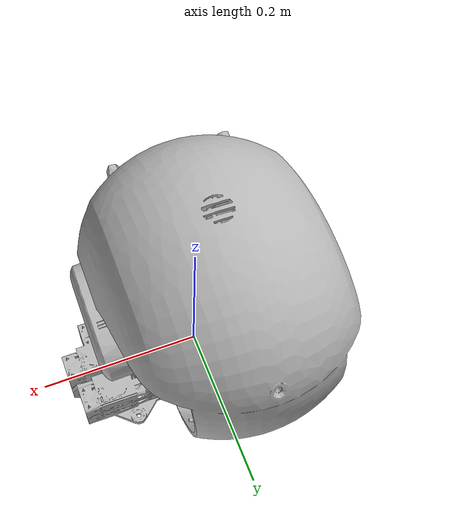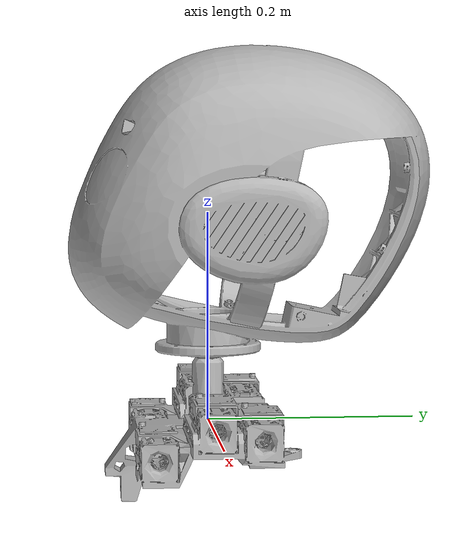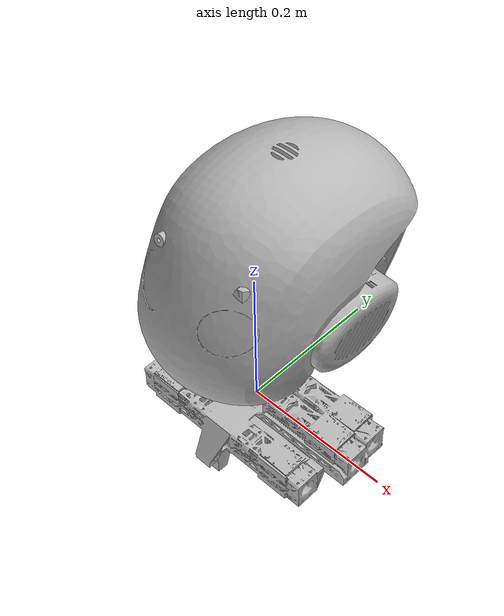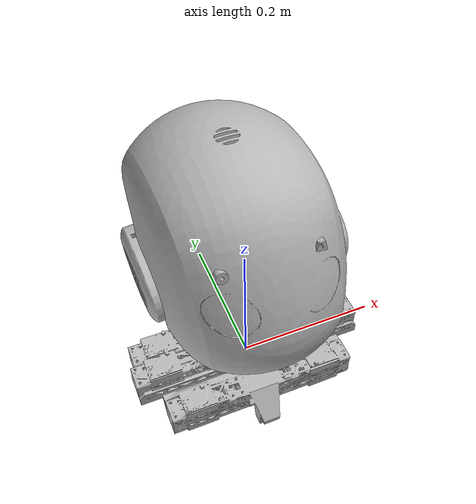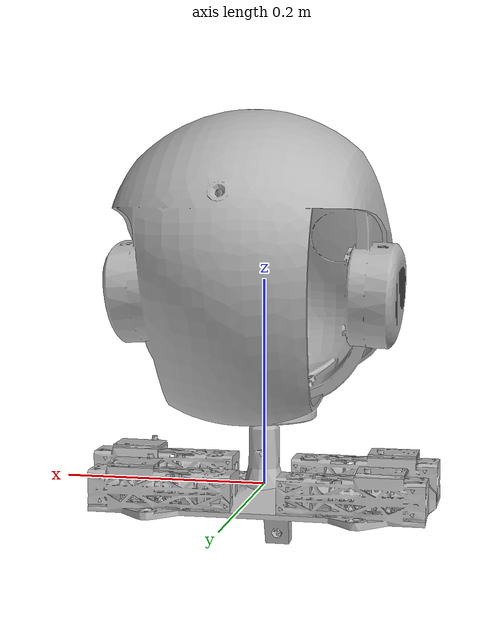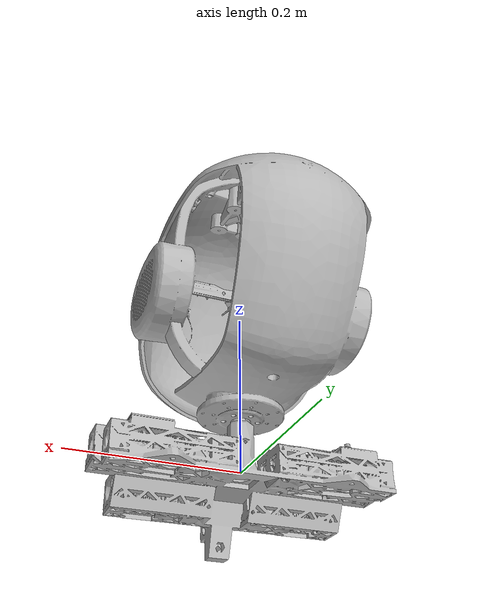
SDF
<sdf version="1.6">
	<model name="roboy_head">
		<link name="neck">
			<self_collide>false</self_collide>
			<pose frame="">-1.8149377975533533e-06 -0.009175044956787616 -0.0038904125653804983 0.0 -0.0 0.0</pose>
			<inertial>
				<pose frame="">0.0 0.0 0.0 0 0 0</pose>
				<mass>2.0475091175557028</mass>
				<inertia>
					<ixx>0.004341677497807102</ixx>
					<ixy>-1.6638576499188376e-05</ixy>
					<ixz>-1.7498429867411458e-06</ixz>
					<iyy>0.01882627831705663</iyy>
					<iyz>-0.0008482805817586748</iyz>
					<izz>0.021140040574742096</izz>
				</inertia>
			</inertial>
			<collision name="neck_collision">
				<geometry>
					<mesh>
						<uri>model://roboy_head/meshes/collisions/neck.stl</uri>
						<scale>0.001 0.001 0.001</scale>
					</mesh>
				</geometry>
			</collision>
			<visual name="neck_visual">
				<geometry>
					<mesh>
						<uri>model://roboy_head/meshes/visuals/neck.stl</uri>
						<scale>0.001 0.001 0.001</scale>
					</mesh>
				</geometry>
			</visual>
		</link>
		<link name="head">
			<self_collide>false</self_collide>
			<pose frame="">0.0005102159779004964 0.044924115008751916 0.211980978747011 0.0 -0.0 0.0</pose>
			<inertial>
				<pose frame="">0.0 0.0 0.0 0 0 0</pose>
				<mass>2.0495737293465406</mass>
				<inertia>
					<ixx>0.1285217814857278</ixx>
					<ixy>-6.15435012381666e-05</ixy>
					<ixz>-0.0003330693074767625</ixz>
					<iyy>0.11804794413419648</iyy>
					<iyz>-0.022204394459719782</iyz>
					<izz>0.030242672185104177</izz>
				</inertia>
			</inertial>
			<collision name="head_collision">
				<geometry>
					<mesh>
						<uri>model://roboy_head/meshes/collisions/head.stl</uri>
						<scale>0.001 0.001 0.001</scale>
					</mesh>
				</geometry>
			</collision>
			<visual name="head_visual">
				<geometry>
					<mesh>
						<uri>model://roboy_head/meshes/visuals/head.stl</uri>
						<scale>0.001 0.001 0.001</scale>
					</mesh>
				</geometry>
			</visual>
		</link>
		<link name="zed_camera_left_lense">
			<self_collide>false</self_collide>
			<pose frame="">0.060224029002960845 -0.07066714719955536 0.2805752876362124 0.0 -0.0 0.0</pose>
			<inertial>
				<pose frame="">0.0 0.0 0.0 0 0 0</pose>
				<mass>0.005755421856391891</mass>
				<inertia>
					<ixx>0.00048221143494491534</ixx>
					<ixy>2.449485115264801e-05</ixy>
					<ixz>-9.725164857961536e-05</ixz>
					<iyy>0.00047416232876470397</iyy>
					<iyz>0.0001141566698388886</iyz>
					<izz>5.0008392870139496e-05</izz>
				</inertia>
			</inertial>
			<collision name="zed_camera_left_lense_collision">
				<geometry>
					<mesh>
						<uri>model://roboy_head/meshes/collisions/zed_camera_left_lense.stl</uri>
						<scale>0.001 0.001 0.001</scale>
					</mesh>
				</geometry>
			</collision>
			<visual name="zed_camera_left_lense_visual">
				<geometry>
					<mesh>
						<uri>model://roboy_head/meshes/visuals/zed_camera_left_lense.stl</uri>
						<scale>0.001 0.001 0.001</scale>
					</mesh>
				</geometry>
			</visual>
		</link>
		<link name="zed_camera_right_lense">
			<self_collide>false</self_collide>
			<pose frame="">-0.05977745584801605 -0.07104414423233865 0.28057528759865397 0.0 -0.0 0.0</pose>
			<inertial>
				<pose frame="">0.0 0.0 0.0 0 0 0</pose>
				<mass>0.005755421855125981</mass>
				<inertia>
					<ixx>0.00048251891666343074</ixx>
					<ixy>-2.4441773765426615e-05</ixy>
					<ixz>9.653024800471e-05</ixz>
					<iyy>0.0004738538988814524</iyy>
					<iyz>0.00011476545559992052</iyz>
					<izz>5.000744514650461e-05</izz>
				</inertia>
			</inertial>
			<collision name="zed_camera_right_lense_collision">
				<geometry>
					<mesh>
						<uri>model://roboy_head/meshes/collisions/zed_camera_right_lense.stl</uri>
						<scale>0.001 0.001 0.001</scale>
					</mesh>
				</geometry>
			</collision>
			<visual name="zed_camera_right_lense_visual">
				<geometry>
					<mesh>
						<uri>model://roboy_head/meshes/visuals/zed_camera_right_lense.stl</uri>
						<scale>0.001 0.001 0.001</scale>
					</mesh>
				</geometry>
			</visual>
		</link>
		<link name="zed_camera">
			<self_collide>false</self_collide>
			<pose frame="">0.0042444847902538396 -0.05946040237166452 0.277995220012499 0.0 -0.0 0.0</pose>
			<inertial>
				<pose frame="">0.0 0.0 0.0 0 0 0</pose>
				<mass>0.0096339079892267</mass>
				<inertia>
					<ixx>0.0007788796926614204</ixx>
					<ixy>2.4987610089390115e-06</ixy>
					<ixz>-1.1386553970512425e-05</ixz>
					<iyy>0.0007596640801931402</iyy>
					<iyz>0.0001591957506421817</iyz>
					<izz>4.897438830692027e-05</izz>
				</inertia>
			</inertial>
			<collision name="zed_camera_collision">
				<geometry>
					<mesh>
						<uri>model://roboy_head/meshes/collisions/zed_camera.stl</uri>
						<scale>0.001 0.001 0.001</scale>
					</mesh>
				</geometry>
			</collision>
			<visual name="zed_camera_visual">
				<geometry>
					<mesh>
						<uri>model://roboy_head/meshes/visuals/zed_camera.stl</uri>
						<scale>0.001 0.001 0.001</scale>
					</mesh>
				</geometry>
			</visual>
		</link>
		<link name="sphere_head_link1">
			<self_collide>false</self_collide>
			<pose frame="">-1.5061049265673543e-10 -1.5061528859084698e-10 0.06647893559374944 0.0 -0.0 0.0</pose>
			<inertial>
				<pose frame="">0.0 0.0 0.0 0 0 0</pose>
				<mass>0.017038665636260344</mass>
				<inertia>
					<ixx>7.641228262717032e-05</ixx>
					<ixy>1.1384122811097797e-21</ixy>
					<ixz>1.7059836425470377e-13</ixz>
					<iyy>7.641228262717034e-05</iyy>
					<iyz>1.706037961943241e-13</iyz>
					<izz>1.1107708503000374e-06</izz>
				</inertia>
			</inertial>
			<collision name="sphere_head_link1_collision">
				<geometry>
					<mesh>
						<uri>model://roboy_head/meshes/collisions/sphere_head_link1.stl</uri>
						<scale>0.001 0.001 0.001</scale>
					</mesh>
				</geometry>
			</collision>
			<visual name="sphere_head_link1_visual">
				<geometry>
					<mesh>
						<uri>model://roboy_head/meshes/visuals/sphere_head_link1.stl</uri>
						<scale>0.001 0.001 0.001</scale>
					</mesh>
				</geometry>
			</visual>
		</link>
		<link name="sphere_head_link2">
			<self_collide>false</self_collide>
			<pose frame="">-1.2765771046916346e-10 -1.276638116636219e-10 0.06647893559374916 0.0 -0.0 0.0</pose>
			<inertial>
				<pose frame="">0.0 0.0 0.0 0 0 0</pose>
				<mass>0.011421521917888844</mass>
				<inertia>
					<ixx>5.097860160005369e-05</ixx>
					<ixy>-8.158621347953421e-22</ixy>
					<ixz>9.692929657696692e-14</ixz>
					<iyy>5.097860160005372e-05</iyy>
					<iyz>9.693393943424612e-14</iyz>
					<izz>5.017693548664116e-07</izz>
				</inertia>
			</inertial>
			<collision name="sphere_head_link2_collision">
				<geometry>
					<mesh>
						<uri>model://roboy_head/meshes/collisions/sphere_head_link2.stl</uri>
						<scale>0.001 0.001 0.001</scale>
					</mesh>
				</geometry>
			</collision>
			<visual name="sphere_head_link2_visual">
				<geometry>
					<mesh>
						<uri>model://roboy_head/meshes/visuals/sphere_head_link2.stl</uri>
						<scale>0.001 0.001 0.001</scale>
					</mesh>
				</geometry>
			</visual>
		</link>
		<joint name="zed_camera_right" type="fixed">
			<parent>zed_camera</parent>
			<child>zed_camera_right_lense</child>
			<pose frame="">-3.4778066172904685e-05 0.011070006217811788 -0.002353014092107415 0 0 0</pose>
		</joint>
		<joint name="zed_camera_left" type="fixed">
			<parent>zed_camera</parent>
			<child>zed_camera_left_lense</child>
			<pose frame="">-5.466550911889634e-05 0.011069943702269418 -0.002353014260491726 0 0 0</pose>
		</joint>
		<joint name="zed_camera_mount" type="fixed">
			<parent>head</parent>
			<child>zed_camera</child>
			<pose frame="">0.017437654685091043 0.0014055889584145653 0.008052233827783866 0 0 0</pose>
		</joint>
		<joint name="sphere_head_axis0" type="revolute">
			<parent>neck</parent>
			<child>sphere_head_link1</child>
			<pose frame="">1.506150534492037e-10 1.5061482676757368e-10 6.217248937900877e-17 0 0 0</pose>
			<axis>
				<xyz>1 0 0</xyz>
				<limit>
					<lower>-0.5235987755982988</lower>
					<upper>0.5235987755982988</upper>
				</limit>
				<use_parent_model_frame>0</use_parent_model_frame>
			</axis>
		</joint>
		<joint name="sphere_head_axis2" type="revolute">
			<parent>sphere_head_link2</parent>
			<child>head</child>
			<pose frame="">-0.0005102159778959368 -0.04492411500875237 -0.14550204315326165 0 0 0</pose>
			<axis>
				<xyz>0 0 1</xyz>
				<limit>
					<lower>-0.5235987755982988</lower>
					<upper>0.5235987755982988</upper>
				</limit>
				<use_parent_model_frame>0</use_parent_model_frame>
			</axis>
		</joint>
		<joint name="sphere_head_axis1" type="revolute">
			<parent>sphere_head_link1</parent>
			<child>sphere_head_link2</child>
			<pose frame="">1.2766226704758196e-10 1.276634094495146e-10 3.375077994860476e-16 0 0 0</pose>
			<axis>
				<xyz>0 1 0</xyz>
				<limit>
					<lower>-0.5235987755982988</lower>
					<upper>0.5235987755982988</upper>
				</limit>
				<use_parent_model_frame>0</use_parent_model_frame>
			</axis>
		</joint>
		<plugin filename="libcardsflow_gazebo_plugin.so" name="cardsflow_gazebo_plugin" />
	</model>
</sdf>
